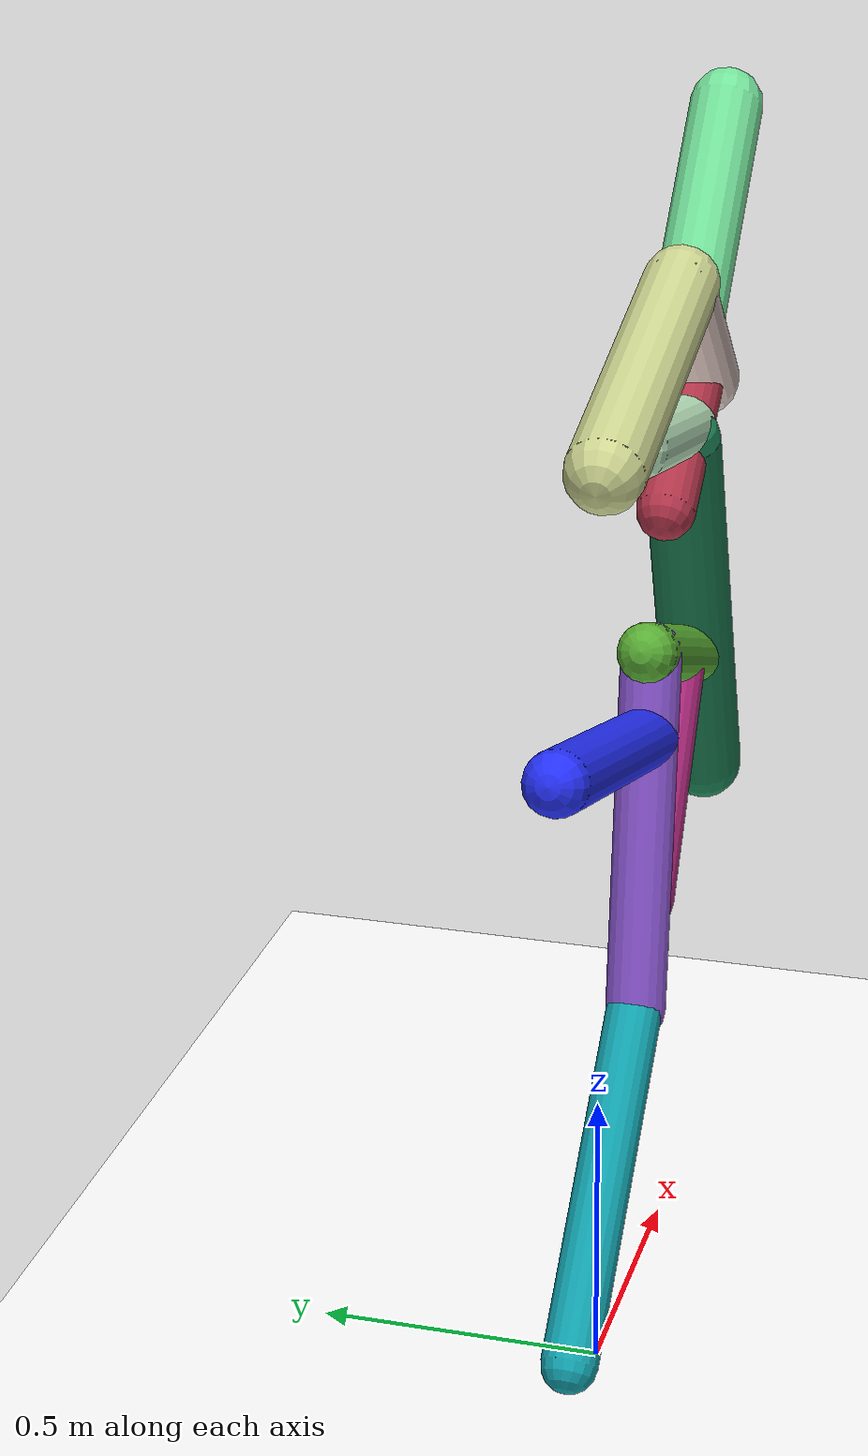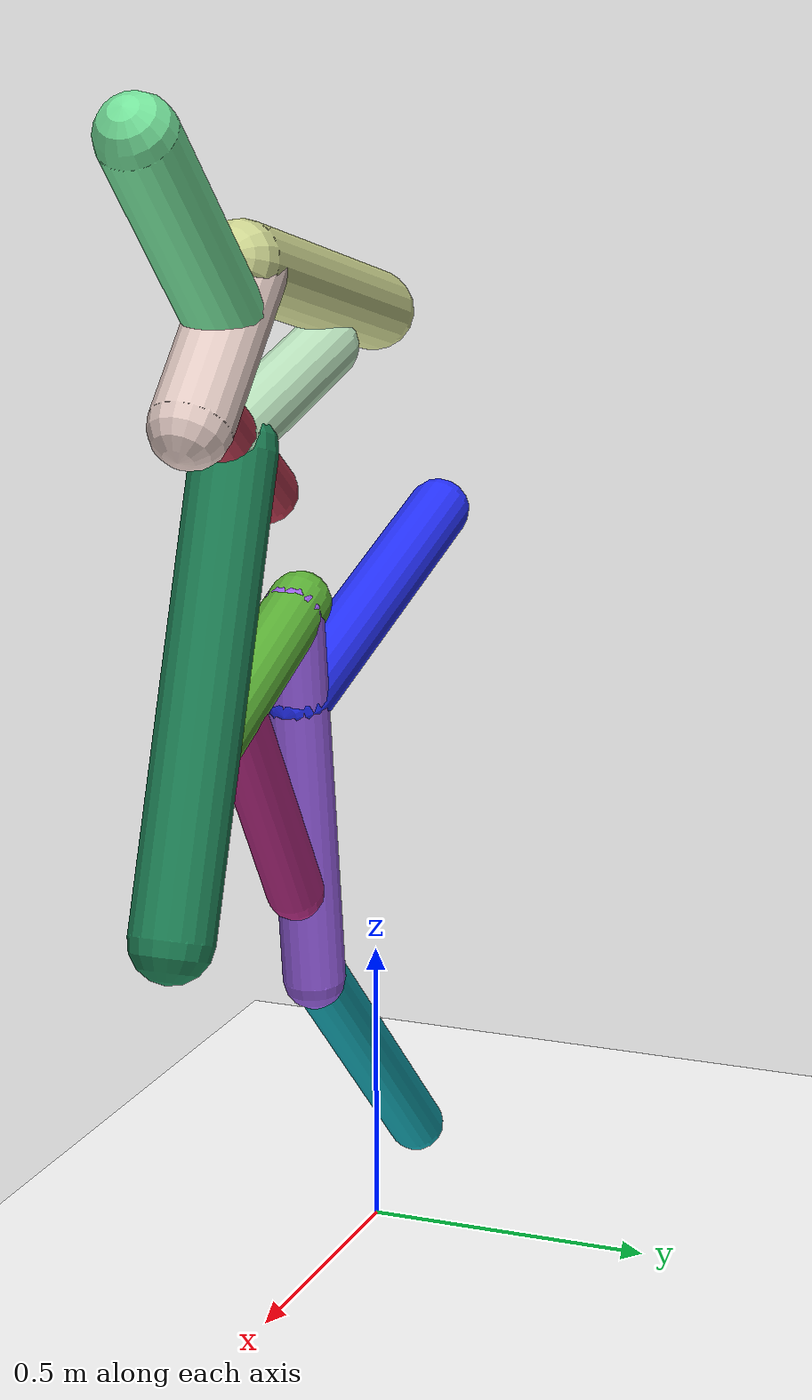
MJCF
<mujoco model="morphology">
  <option timestep="0.01"/>
  <default>
    <default class="/"/>
    <default class="0/"/>
    <default class="0/1/"/>
    <default class="0/1/2/"/>
    <default class="0/1/3/"/>
    <default class="0/1/3/4/"/>
    <default class="0/1/3/5/"/>
    <default class="0/1/3/5/6/"/>
    <default class="0/1/3/5/6/7/"/>
    <default class="0/1/3/5/6/8/"/>
    <default class="0/1/3/5/6/8/9/"/>
    <default class="0/1/3/5/6/8/10/"/>
  </default>
  <asset>
    <texture name="texplane" type="2d" builtin="checker" rgb1="0.10000000000000001 0.20000000000000001 0.29999999999999999" rgb2="0.20000000000000001 0.29999999999999999 0.40000000000000002" width="300" height="300"/>
    <material name="MatPlane" class="/" texture="texplane" texrepeat="20 20" specular="1" shininess="1" reflectance="0.5"/>
  </asset>
  <worldbody>
    <light name="//unnamed_light_0" class="/" directional="true" pos="0 0 1.5" dir="0 0 -1.3" cutoff="100" exponent="1" diffuse="1 1 1" specular="0.10000000000000001 0.10000000000000001 0.10000000000000001"/>
    <geom name="ground" class="/" type="plane" size="15 15 0.5" material="MatPlane" rgba="1 1 1 1"/>
    <site name="body" class="/" size="9.9999999999999995e-07 9.9999999999999995e-07 9.9999999999999995e-07" pos="0 0 1.6344312191009522"/>
    <body pos="0 0 1.6344312191009522" name="0/">
      <joint name="0/rootx/" class="/" type="slide" axis="1 0 0" limited="false" stiffness="0" armature="0" damping="0"/>
      <joint name="0/rootz/" class="/" type="slide" axis="0 0 1" limited="false" stiffness="0" armature="0" damping="0"/>
      <joint name="0/rooty/" class="/" type="hinge" axis="0 1 0" limited="false" stiffness="0" armature="0" damping="0"/>
      <geom name="0/geom" class="0/" type="capsule" contype="1" conaffinity="1" condim="3" size="0.067463069986581983" rgba="0.80417224576210089 0.83421240540898034 0.56556174830909212 1" friction="0.59999999999999998 0.10000000000000001 0.10000000000000001" fromto="0 0 0 0.55068687941865457 0 0.16128966548966939"/>
      <site name="0/end0" class="0/" size="0.0050000000000000001" pos="0.55068687941865457 0 0.16128966548966939"/>
      <site name="0/attach1" class="0/" size="9.9999999999999995e-07 9.9999999999999995e-07 9.9999999999999995e-07" pos="0.52091991965425644 0 0.15257127548896221"/>
      <body pos="0.52091991965425644 0 0.15257127548896221" name="0/1/">
        <joint name="0/1/joint/" class="0/" type="hinge" axis="0 1 0" limited="true" range="-58.028573078160775 58.028573078160775"/>
        <geom name="0/1/geom" class="0/1/" type="capsule" contype="1" conaffinity="1" condim="3" size="0.067352315445307898" rgba="0.88991230528778698 0.79640254475057459 0.77018612609448023 1" friction="0.59999999999999998 0.10000000000000001 0.10000000000000001" fromto="0 0 0 0.21802315799205862 0 -0.21367747410325677"/>
        <site name="0/1/end1" class="0/1/" size="0.0050000000000000001" pos="0.21802315799205862 0 -0.21367747410325677"/>
        <site name="0/1/attach2" class="0/1/" size="9.9999999999999995e-07 9.9999999999999995e-07 9.9999999999999995e-07" pos="0.077713351898634861 0 -0.0761643528638489"/>
        <body pos="0.077713351898634861 0 -0.0761643528638489" name="0/1/2/">
          <joint name="0/1/2/joint/" class="0/1/" type="hinge" axis="0 1 0" limited="true" range="-60.529797495283901 60.529797495283901"/>
          <geom name="0/1/2/geom" class="0/1/2/" type="capsule" contype="1" conaffinity="1" condim="3" size="0.064978707327676119" rgba="0.45608396566442366 0.88984629752510791 0.60754677270362156 1" friction="0.59999999999999998 0.10000000000000001 0.10000000000000001" fromto="0 0 0 0.30744798828321573 0 0.31806217998409592"/>
          <site name="0/1/2/end2" class="0/1/2/" size="0.0050000000000000001" pos="0.30744798828321573 0 0.31806217998409592"/>
        </body>
        <site name="0/1/attach3" class="0/1/" size="9.9999999999999995e-07 9.9999999999999995e-07 9.9999999999999995e-07" pos="0.18382382398850697 0 -0.18015980848830998"/>
        <body pos="0.18382382398850697 0 -0.18015980848830998" name="0/1/3/">
          <joint name="0/1/3/joint/" class="0/1/" type="hinge" axis="0 1 0" limited="true" range="-52.003710578758202 52.003710578758202"/>
          <geom name="0/1/3/geom" class="0/1/3/" type="capsule" contype="1" conaffinity="1" condim="3" size="0.052191032042616339" rgba="0.69323737761328985 0.20657718067177178 0.29214713389358582 1" friction="0.59999999999999998 0.10000000000000001 0.10000000000000001" fromto="0 0 0 -0.24557458646351216 0 -0.18946858463913074"/>
          <site name="0/1/3/end3" class="0/1/3/" size="0.0050000000000000001" pos="-0.24557458646351216 0 -0.18946858463913074"/>
          <site name="0/1/3/attach4" class="0/1/3/" size="9.9999999999999995e-07 9.9999999999999995e-07 9.9999999999999995e-07" pos="-0.10273543685316862 0 -0.079263648951496082"/>
          <body pos="-0.10273543685316862 0 -0.079263648951496082" name="0/1/3/4/">
            <geom name="0/1/3/4/geom" class="0/1/3/4/" type="capsule" contype="1" conaffinity="1" condim="3" size="0.055614235916558521" rgba="0.75235193555056745 0.9168959430124537 0.76469767478379691 1" friction="0.59999999999999998 0.10000000000000001 0.10000000000000001" fromto="0 0 0 -0.38919555920977705 0 0.08110818537838127"/>
            <site name="0/1/3/4/end4" class="0/1/3/4/" size="0.0050000000000000001" pos="-0.38919555920977705 0 0.08110818537838127"/>
          </body>
          <site name="0/1/3/attach5" class="0/1/3/" size="9.9999999999999995e-07 9.9999999999999995e-07 9.9999999999999995e-07" pos="-0.12697027388393176 0 -0.097961594603380275"/>
          <body pos="-0.12697027388393176 0 -0.097961594603380275" name="0/1/3/5/">
            <joint name="0/1/3/5/joint/" class="0/1/3/" type="hinge" axis="0 1 0" limited="true" range="-67.113744729520334 67.113744729520334"/>
            <geom name="0/1/3/5/geom" class="0/1/3/5/" type="capsule" contype="1" conaffinity="1" condim="3" size="0.069287549603548687" rgba="0.11774686632713538 0.52187607508407097 0.34605136735734365 1" friction="0.59999999999999998 0.10000000000000001 0.10000000000000001" fromto="0 0 0 0.26227991617180613 0 -0.72125007445615785"/>
            <site name="0/1/3/5/end5" class="0/1/3/5/" size="0.0050000000000000001" pos="0.26227991617180613 0 -0.72125007445615785"/>
            <site name="0/1/3/5/attach6" class="0/1/3/5/" size="9.9999999999999995e-07 9.9999999999999995e-07 9.9999999999999995e-07" pos="0.17066876249300009 0 -0.46932628106676494"/>
            <body pos="0.17066876249300009 0 -0.46932628106676494" name="0/1/3/5/6/">
              <joint name="0/1/3/5/6/joint/" class="0/1/3/5/" type="hinge" axis="0 1 0" limited="true" range="-32.099645449555574 32.099645449555574"/>
              <geom name="0/1/3/5/6/geom" class="0/1/3/5/6/" type="capsule" contype="1" conaffinity="1" condim="3" size="0.052847491843734752" rgba="0.35263012264197091 0.68490530202172317 0.20640493000807125 1" friction="0.59999999999999998 0.10000000000000001 0.10000000000000001" fromto="0 0 0 -0.42156835078461524 0 0.1652725596025808"/>
              <site name="0/1/3/5/6/end6" class="0/1/3/5/6/" size="0.0050000000000000001" pos="-0.42156835078461524 0 0.1652725596025808"/>
              <site name="0/1/3/5/6/attach7" class="0/1/3/5/6/" size="9.9999999999999995e-07 9.9999999999999995e-07 9.9999999999999995e-07" pos="-0.1528152689175174 0 0.059910025487796913"/>
              <body pos="-0.1528152689175174 0 0.059910025487796913" name="0/1/3/5/6/7/">
                <joint name="0/1/3/5/6/7/joint/" class="0/1/3/5/6/" type="hinge" axis="0 1 0" limited="true" range="-60.264572591957105 60.264572591957105"/>
                <geom name="0/1/3/5/6/7/geom" class="0/1/3/5/6/7/" type="capsule" contype="1" conaffinity="1" condim="3" size="0.048568262418617558" rgba="0.71311720378547838 0.16538512036014075 0.51548154313076133 1" friction="0.59999999999999998 0.10000000000000001 0.10000000000000001" fromto="0 0 0 -0.23988832784385894 0 -0.38203674275840205"/>
                <site name="0/1/3/5/6/7/end7" class="0/1/3/5/6/7/" size="0.0050000000000000001" pos="-0.23988832784385894 0 -0.38203674275840205"/>
              </body>
              <site name="0/1/3/5/6/attach8" class="0/1/3/5/6/" size="9.9999999999999995e-07 9.9999999999999995e-07 9.9999999999999995e-07" pos="-0.38642591977138496 0 0.15149524564292563"/>
              <body pos="-0.38642591977138496 0 0.15149524564292563" name="0/1/3/5/6/8/">
                <joint name="0/1/3/5/6/8/joint/" class="0/1/3/5/6/" type="hinge" axis="0 1 0" limited="true" range="-56.50758439060786 56.50758439060786"/>
                <geom name="0/1/3/5/6/8/geom" class="0/1/3/5/6/8/" type="capsule" contype="1" conaffinity="1" condim="3" size="0.053525358804559608" rgba="0.60589219688109819 0.38140259031224044 0.91128696973243528 1" friction="0.59999999999999998 0.10000000000000001 0.10000000000000001" fromto="0 0 0 -0.083177795457809567 0 -0.65034673850117541"/>
                <site name="0/1/3/5/6/8/end8" class="0/1/3/5/6/8/" size="0.0050000000000000001" pos="-0.083177795457809567 0 -0.65034673850117541"/>
                <site name="0/1/3/5/6/8/attach9" class="0/1/3/5/6/8/" size="9.9999999999999995e-07 9.9999999999999995e-07 9.9999999999999995e-07" pos="-0.019079443554616785 0 -0.14917747963705241"/>
                <body pos="-0.019079443554616785 0 -0.14917747963705241" name="0/1/3/5/6/8/9/">
                  <joint name="0/1/3/5/6/8/9/joint/" class="0/1/3/5/6/8/" type="hinge" axis="0 1 0" limited="true" range="-55.490711322889567 55.490711322889567"/>
                  <geom name="0/1/3/5/6/8/9/geom" class="0/1/3/5/6/8/9/" type="capsule" contype="1" conaffinity="1" condim="3" size="0.054781559291611243" rgba="0.14749040430679328 0.1931074376305868 0.99115098313379124 1" friction="0.59999999999999998 0.10000000000000001 0.10000000000000001" fromto="0 0 0 -0.6462897117245856 0 0.18764840910361569"/>
                  <site name="0/1/3/5/6/8/9/end9" class="0/1/3/5/6/8/9/" size="0.0050000000000000001" pos="-0.6462897117245856 0 0.18764840910361569"/>
                </body>
                <site name="0/1/3/5/6/8/attach10" class="0/1/3/5/6/8/" size="9.9999999999999995e-07 9.9999999999999995e-07 9.9999999999999995e-07" pos="-0.081027128846743082 0 -0.63353120487934578"/>
                <body pos="-0.081027128846743082 0 -0.63353120487934578" name="0/1/3/5/6/8/10/">
                  <joint name="0/1/3/5/6/8/10/joint/" class="0/1/3/5/6/8/" type="hinge" axis="0 1 0" limited="true" range="-39.966133631113749 39.966133631113749"/>
                  <geom name="0/1/3/5/6/8/10/geom" class="0/1/3/5/6/8/10/" type="capsule" contype="1" conaffinity="1" condim="3" size="0.049947865505045042" rgba="0.067182326717041607 0.63857684366414913 0.68420184554713648 1" friction="0.59999999999999998 0.10000000000000001 0.10000000000000001" fromto="0 0 0 -0.47430311176604872 0 -0.45751881721822218"/>
                  <site name="0/1/3/5/6/8/10/end10" class="0/1/3/5/6/8/10/" size="0.0050000000000000001" pos="-0.47430311176604872 0 -0.45751881721822218"/>
                </body>
              </body>
            </body>
          </body>
        </body>
      </body>
      <camera name="0/side" class="0/" mode="trackcom" pos="0.40000000000000002 -4 0.20000000000000001" quat="0.70699999999999996 0.70699999999999996 0 0"/>
    </body>
  </worldbody>
  <actuator>
    <motor name="0/1/motor" class="0/1/" ctrllimited="true" ctrlrange="-1 1" gear="65" joint="0/1/joint/"/>
    <motor name="0/1/2/motor" class="0/1/2/" ctrllimited="true" ctrlrange="-1 1" gear="77" joint="0/1/2/joint/"/>
    <motor name="0/1/3/motor" class="0/1/3/" ctrllimited="true" ctrlrange="-1 1" gear="61" joint="0/1/3/joint/"/>
    <motor name="0/1/3/5/motor" class="0/1/3/5/" ctrllimited="true" ctrlrange="-1 1" gear="60" joint="0/1/3/5/joint/"/>
    <motor name="0/1/3/5/6/motor" class="0/1/3/5/6/" ctrllimited="true" ctrlrange="-1 1" gear="60" joint="0/1/3/5/6/joint/"/>
    <motor name="0/1/3/5/6/7/motor" class="0/1/3/5/6/7/" ctrllimited="true" ctrlrange="-1 1" gear="70" joint="0/1/3/5/6/7/joint/"/>
    <motor name="0/1/3/5/6/8/motor" class="0/1/3/5/6/8/" ctrllimited="true" ctrlrange="-1 1" gear="59" joint="0/1/3/5/6/8/joint/"/>
    <motor name="0/1/3/5/6/8/9/motor" class="0/1/3/5/6/8/9/" ctrllimited="true" ctrlrange="-1 1" gear="88" joint="0/1/3/5/6/8/9/joint/"/>
    <motor name="0/1/3/5/6/8/10/motor" class="0/1/3/5/6/8/10/" ctrllimited="true" ctrlrange="-1 1" gear="88" joint="0/1/3/5/6/8/10/joint/"/>
  </actuator>
  <sensor>
    <subtreelinvel name="velocity" body="0/"/>
  </sensor>
</mujoco>
